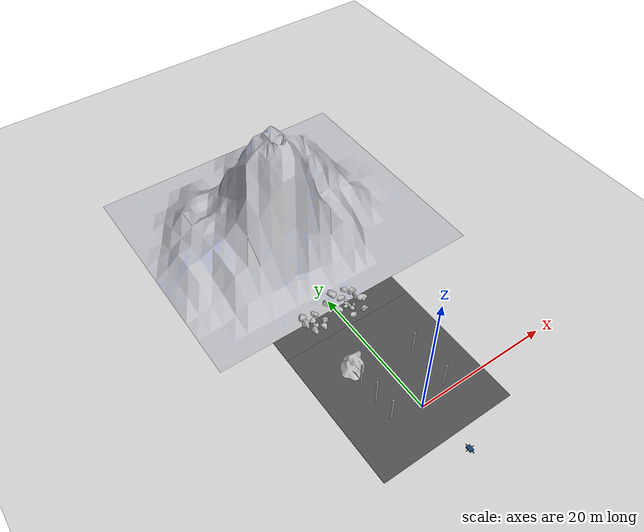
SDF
<sdf version="1.6">
 <world name="default">
  <model name="ground_plane">
   <static>1</static>
   <link name="link">
    <collision name="collision">
     <geometry><plane><normal>0 0 1</normal><size>100 100</size></plane></geometry>
     <surface>
      <contact><collide_bitmask>65535</collide_bitmask></contact>
      <friction><ode><mu>100</mu><mu2>50</mu2></ode></friction>
     </surface>
    </collision>
    <visual name="visual">
     <cast_shadows>0</cast_shadows>
     <geometry><plane><normal>0 0 1</normal><size>100 100</size></plane></geometry>
     <material>
      <script><uri>file://media/materials/scripts/gazebo.material</uri><name>Gazebo/Grey</name></script>
     </material>
    </visual>
   </link>
  </model>
  <gravity>0 0 -9.8</gravity>
  <magnetic_field>6e-06 2.3e-05 -4.2e-05</magnetic_field>
  <atmosphere type="adiabatic"/>
  <physics name="default_physics" default="0" type="ode">
   <max_step_size>0.001</max_step_size>
   <real_time_factor>1</real_time_factor>
   <real_time_update_rate>1000</real_time_update_rate>
  </physics>
  <scene><ambient>0.4 0.4 0.4 1</ambient><background>0.7 0.7 0.7 1</background><shadows>1</shadows></scene>
  <audio><device>default</device></audio>
  <spherical_coordinates>
   <surface_model>EARTH_WGS84</surface_model>
   <latitude_deg>0</latitude_deg>
   <longitude_deg>0</longitude_deg>
   <elevation>0</elevation>
   <heading_deg>0</heading_deg>
  </spherical_coordinates>
  <model name="asphalt_plane">
   <static>1</static>
   <link name="link">
    <collision name="collision"><geometry><box><size>20 20 0.1</size></box></geometry></collision>
    <visual name="visual">
     <cast_shadows>0</cast_shadows>
     <geometry><box><size>20 20 0.1</size></box></geometry>
     <material>
      <script>
       <uri>model://asphalt_plane/materials/scripts</uri>
       <uri>model://asphalt_plane/materials/textures</uri>
       <name>vrc/asphalt</name>
      </script>
     </material>
    </visual>
   </link>
   <pose>0 5 0 0 -0 0</pose>
  </model>
  <model name="asphalt_plane_0">
   <static>1</static>
   <link name="link">
    <collision name="collision"><geometry><box><size>20 20 0.1</size></box></geometry></collision>
    <visual name="visual">
     <cast_shadows>0</cast_shadows>
     <geometry><box><size>20 20 0.1</size></box></geometry>
     <material>
      <script>
       <uri>model://asphalt_plane/materials/scripts</uri>
       <uri>model://asphalt_plane/materials/textures</uri>
       <name>vrc/asphalt</name>
      </script>
     </material>
    </visual>
   </link>
   <pose>0 25 0 0 -0 0</pose>
  </model>
  <model name="rock_1">
   <static>1</static>
   <link name="rock_1__link">
    <collision name="collision">
     <geometry><mesh><scale>3 3 3</scale><uri>model://rock_1/meshes/model.dae</uri></mesh></geometry>
    </collision>
    <visual name="visual">
     <geometry><mesh><scale>3 3 3</scale><uri>model://rock_1/meshes/model.dae</uri></mesh></geometry>
    </visual>
   </link>
   <pose>-11 55 0 0 0 -1.571</pose>
  </model>
  <model name="rock_2">
   <static>1</static>
   <link name="rock_2_link">
    <collision name="collision">
     <geometry><mesh><uri>model://rock_2/meshes/model.dae</uri></mesh></geometry>
    </collision>
    <visual name="visual"><geometry><mesh><uri>model://rock_2/meshes/model.dae</uri></mesh></geometry></visual>
   </link>
   <pose>-2.7737 16.3393 0 0 -0 0</pose>
  </model>
  <model name="rock_4">
   <static>1</static>
   <link name="rock_4_link">
    <collision name="collision">
     <geometry><mesh><uri>model://rock_4/meshes/model.dae</uri></mesh></geometry>
    </collision>
    <visual name="visual"><geometry><mesh><uri>model://rock_4/meshes/model.dae</uri></mesh></geometry></visual>
   </link>
   <pose>1.88841 17.7999 0 0 -0 0</pose>
  </model>
  <model name="rock_3">
   <static>1</static>
   <link name="rock_3_link">
    <collision name="collision">
     <geometry><mesh><scale>5 5 5</scale><uri>model://rock_3/meshes/model.dae</uri></mesh></geometry>
    </collision>
    <visual name="visual">
     <geometry><mesh><scale>5 5 5</scale><uri>model://rock_3/meshes/model.dae</uri></mesh></geometry>
    </visual>
   </link>
   <pose>-17.5982 -0.86224 0 0 -0 0</pose>
  </model>
  <model name="rock_4_0">
   <static>1</static>
   <link name="rock_4_link">
    <collision name="collision">
     <geometry><mesh><uri>model://rock_4/meshes/model.dae</uri></mesh></geometry>
    </collision>
    <visual name="visual"><geometry><mesh><uri>model://rock_4/meshes/model.dae</uri></mesh></geometry></visual>
   </link>
   <pose>1.74598 18.4369 0 0 -0 1.85676</pose>
  </model>
  <model name="rock_3_0">
   <static>1</static>
   <link name="rock_3_link">
    <collision name="collision">
     <geometry><mesh><scale>5 5 5</scale><uri>model://rock_3/meshes/model.dae</uri></mesh></geometry>
    </collision>
    <visual name="visual">
     <geometry><mesh><scale>5 5 5</scale><uri>model://rock_3/meshes/model.dae</uri></mesh></geometry>
    </visual>
   </link>
   <pose>-17.6887 0.694022 0 0 0 -0.079978</pose>
  </model>
  <model name="wood_beam">
   <static>1</static>
   <link name="wood_beam_link">
    <collision name="collision">
     <geometry><mesh><scale>2 2 2</scale><uri>model://wood_beam/meshes/model.dae</uri></mesh></geometry>
    </collision>
    <visual name="visual">
     <geometry><mesh><scale>2 2 2</scale><uri>model://wood_beam/meshes/model.dae</uri></mesh></geometry>
    </visual>
   </link>
   <pose>-6 2 0 0 -0 0</pose>
  </model>
  <model name="wood_beam_0">
   <static>1</static>
   <link name="wood_beam_link">
    <collision name="collision">
     <geometry><mesh><scale>2 2 2</scale><uri>model://wood_beam/meshes/model.dae</uri></mesh></geometry>
    </collision>
    <visual name="visual">
     <geometry><mesh><scale>2 2 2</scale><uri>model://wood_beam/meshes/model.dae</uri></mesh></geometry>
    </visual>
   </link>
   <pose>-6 5 0 0 -0 0</pose>
  </model>
  <model name="wood_beam_1">
   <static>1</static>
   <link name="wood_beam_link">
    <collision name="collision">
     <geometry><mesh><scale>2 2 2</scale><uri>model://wood_beam/meshes/model.dae</uri></mesh></geometry>
    </collision>
    <visual name="visual">
     <geometry><mesh><scale>2 2 2</scale><uri>model://wood_beam/meshes/model.dae</uri></mesh></geometry>
    </visual>
   </link>
   <pose>-6 8 0 0 -0 0</pose>
  </model>
  <model name="wood_beam_2">
   <static>1</static>
   <link name="wood_beam_link">
    <collision name="collision">
     <geometry><mesh><scale>2 2 2</scale><uri>model://wood_beam/meshes/model.dae</uri></mesh></geometry>
    </collision>
    <visual name="visual">
     <geometry><mesh><scale>2 2 2</scale><uri>model://wood_beam/meshes/model.dae</uri></mesh></geometry>
    </visual>
   </link>
   <pose>2.4 2 0 0 -0 0</pose>
  </model>
  <model name="wood_beam_3">
   <static>1</static>
   <link name="wood_beam_link">
    <collision name="collision">
     <geometry><mesh><scale>2 2 2</scale><uri>model://wood_beam/meshes/model.dae</uri></mesh></geometry>
    </collision>
    <visual name="visual">
     <geometry><mesh><scale>2 2 2</scale><uri>model://wood_beam/meshes/model.dae</uri></mesh></geometry>
    </visual>
   </link>
   <pose>2.4 5 0 0 -0 0</pose>
  </model>
  <model name="wood_beam_4">
   <static>1</static>
   <link name="wood_beam_link">
    <collision name="collision">
     <geometry><mesh><scale>2 2 2</scale><uri>model://wood_beam/meshes/model.dae</uri></mesh></geometry>
    </collision>
    <visual name="visual">
     <geometry><mesh><scale>2 2 2</scale><uri>model://wood_beam/meshes/model.dae</uri></mesh></geometry>
    </visual>
   </link>
   <pose>2.4 8 0 0 -0 0</pose>
  </model>
  <light name="user_point_light_0" type="point">
   <pose>-1.61645 11.9622 1 0 -0 0</pose>
   <diffuse>0.5 0.5 0.5 1</diffuse>
   <specular>0.1 0.1 0.1 1</specular>
   <attenuation>
    <range>20</range>
    <constant>0.5</constant>
    <linear>0.01</linear>
    <quadratic>0.001</quadratic>
   </attenuation>
   <cast_shadows>0</cast_shadows>
   <direction>0 0 -1</direction>
  </light>
  <light name="user_point_light_1" type="point">
   <pose>-1.20635 19.3799 1 0 -0 0</pose>
   <diffuse>0.5 0.5 0.5 1</diffuse>
   <specular>0.1 0.1 0.1 1</specular>
   <attenuation>
    <range>20</range>
    <constant>0.5</constant>
    <linear>0.01</linear>
    <quadratic>0.001</quadratic>
   </attenuation>
   <cast_shadows>0</cast_shadows>
   <direction>0 0 -1</direction>
  </light>
  <light name="user_point_light_2" type="point">
   <pose>-3.66888 348.193 1 0 -0 0</pose>
   <diffuse>0.5 0.5 0.5 1</diffuse>
   <specular>0.1 0.1 0.1 1</specular>
   <attenuation>
    <range>20</range>
    <constant>0.5</constant>
    <linear>0.01</linear>
    <quadratic>0.001</quadratic>
   </attenuation>
   <cast_shadows>0</cast_shadows>
   <direction>0 0 -1</direction>
  </light>
  <include><uri>model://inspection_drone</uri><pose>0 -8 2 0 0 1.5708</pose></include>
 </world>
</sdf>

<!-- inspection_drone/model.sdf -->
<sdf version="1.6">
  <model name="inspection_drone">
    <static>false</static>
    <link name="base_link">
      <gravity>false</gravity>
      <inertial><mass>3.0</mass><inertia><ixx>0.2</ixx><iyy>0.2</iyy><izz>0.3</izz></inertia></inertial>
      <collision name="collision"><geometry><box><size>0.8 0.55 0.22</size></box></geometry></collision>
      <visual name="body">
        <geometry><box><size>0.8 0.55 0.22</size></box></geometry>
        <material><ambient>0.04 0.08 0.12 1</ambient><diffuse>0.08 0.25 0.42 1</diffuse></material>
      </visual>
      <visual name="arm_x"><geometry><box><size>1.4 0.07 0.06</size></box></geometry><material><diffuse>0.1 0.1 0.1 1</diffuse></material></visual>
      <visual name="arm_y"><geometry><box><size>0.07 1.2 0.06</size></box></geometry><material><diffuse>0.1 0.1 0.1 1</diffuse></material></visual>
      <visual name="camera_body"><pose>0 0 -0.20 0 0 0</pose><geometry><box><size>0.24 0.24 0.18</size></box></geometry><material><diffuse>0.05 0.05 0.05 1</diffuse></material></visual>
      <sensor name="inspection_camera" type="camera">
        <pose>0 0 -0.20 0 0 1.570796</pose>
        <always_on>true</always_on>
        <update_rate>15</update_rate>
        <visualize>true</visualize>
        <camera>
          <horizontal_fov>1.0472</horizontal_fov>
          <image><width>640</width><height>480</height><format>R8G8B8</format></image>
          <clip><near>0.1</near><far>100</far></clip>
        </camera>
        <plugin name="inspection_camera_ros" filename="libgazebo_ros_camera.so">
          <ros><namespace>/doggo</namespace></ros>
          <camera_name>camera</camera_name>
          <frame_name>camera_optical_frame</frame_name>
        </plugin>
      </sensor>
    </link>
    <plugin name="planar_motion" filename="libgazebo_ros_planar_move.so">
      <ros><namespace>/doggo</namespace></ros>
      <update_rate>30.0</update_rate>
      <publish_odom>true</publish_odom>
      <publish_odom_tf>true</publish_odom_tf>
      <odometry_frame>odom</odometry_frame>
      <robot_base_frame>base_link</robot_base_frame>
    </plugin>
  </model>
</sdf>
